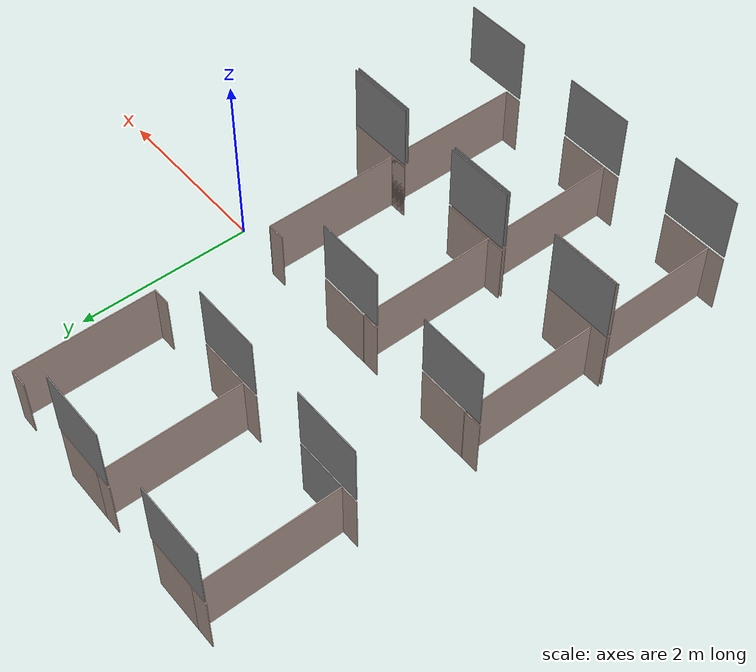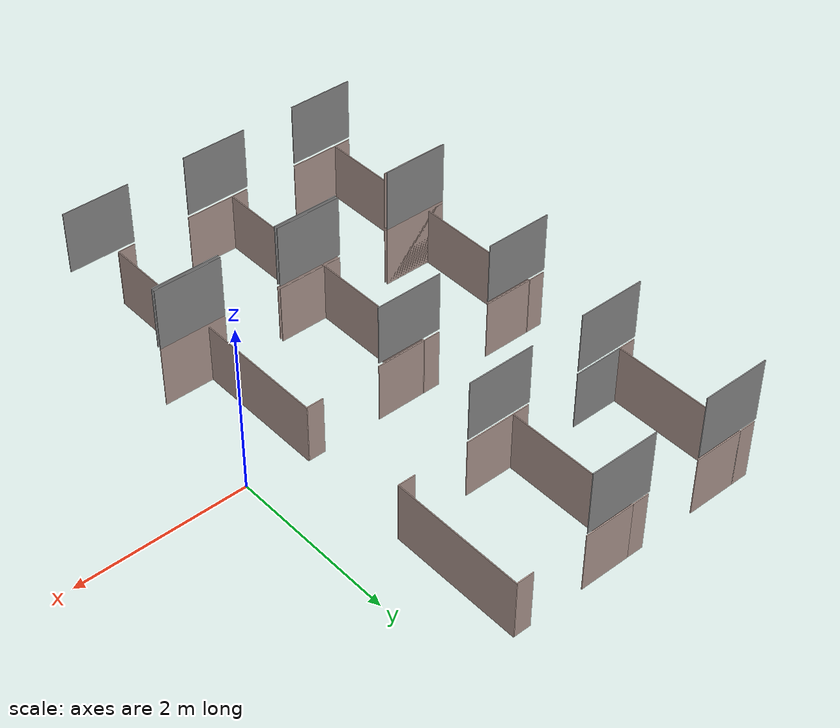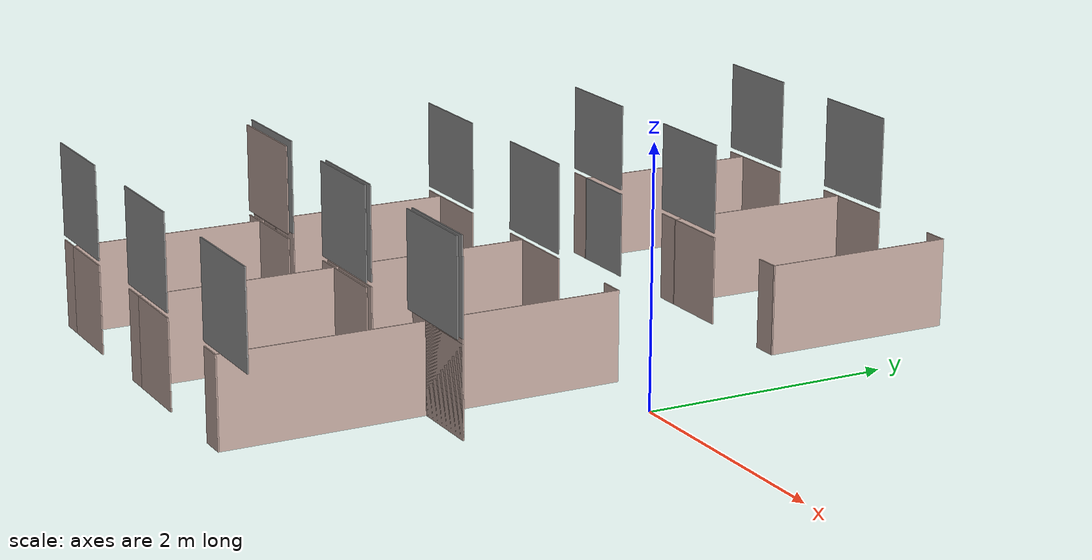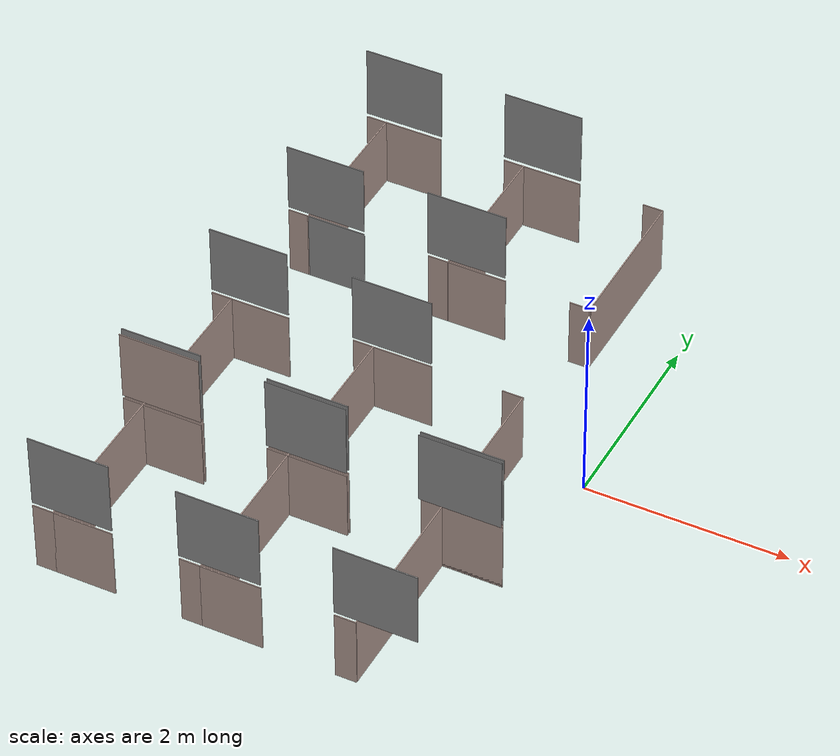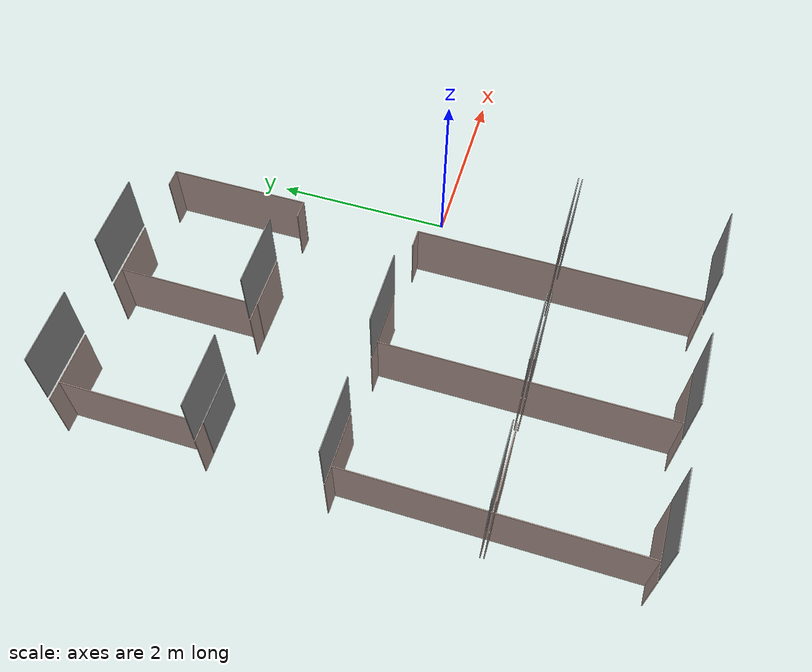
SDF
<sdf version="1.6">
 <model name="change_class2">
  <pose>0.163402 0.008075 0 0 -0 0</pose>
  <link name="Wall_138">
   <collision name="Wall_138_Collision">
    <geometry><box><size>0.593 0.01 0.715</size></box></geometry>
    <pose>0 0 0.3575 0 -0 0</pose>
   </collision>
   <visual name="Wall_138_Visual">
    <pose>0 0 0.3575 0 -0 0</pose>
    <geometry><box><size>0.593 0.01 0.715</size></box></geometry>
    <material>
     <script><uri>file://media/materials/scripts/gazebo.material</uri><name>Gazebo/Grey</name></script>
     <ambient>0.760784 0.662745 0.627451 1</ambient>
    </material>
   </visual>
   <pose>-3.4519 3.04292 0 0 -0 0</pose>
  </link>
  <link name="Wall_140">
   <collision name="Wall_140_Collision">
    <geometry><box><size>0.598 0.01 0.715</size></box></geometry>
    <pose>0 0 0.3575 0 -0 0</pose>
   </collision>
   <visual name="Wall_140_Visual">
    <pose>0 0 0.3575 0 -0 0</pose>
    <geometry><box><size>0.598 0.01 0.715</size></box></geometry>
    <material>
     <script><uri>file://media/materials/scripts/gazebo.material</uri><name>Gazebo/Grey</name></script>
     <ambient>0.760784 0.662745 0.627451 1</ambient>
    </material>
   </visual>
   <pose>-1.9864 3.04292 0 0 -0 0</pose>
  </link>
  <link name="Wall_155">
   <collision name="Wall_155_Collision">
    <geometry><box><size>0.798 0.01 0.715</size></box></geometry>
    <pose>0 0 0.3575 0 -0 0</pose>
   </collision>
   <visual name="Wall_155_Visual">
    <pose>0 0 0.3575 0 -0 0</pose>
    <geometry><box><size>0.798 0.01 0.715</size></box></geometry>
    <material>
     <script><uri>file://media/materials/scripts/gazebo.material</uri><name>Gazebo/Grey</name></script>
     <ambient>1 1 1 1</ambient>
    </material>
   </visual>
   <pose>-3.5494 1.46893 0.751 0 -0 0</pose>
  </link>
  <link name="Wall_156">
   <collision name="Wall_156_Collision">
    <geometry><box><size>0.798 0.01 0.715</size></box></geometry>
    <pose>0 0 0.3575 0 -0 0</pose>
   </collision>
   <visual name="Wall_156_Visual">
    <pose>0 0 0.3575 0 -0 0</pose>
    <geometry><box><size>0.798 0.01 0.715</size></box></geometry>
    <material>
     <script><uri>file://media/materials/scripts/gazebo.material</uri><name>Gazebo/Grey</name></script>
     <ambient>1 1 1 1</ambient>
    </material>
   </visual>
   <pose>-2.0904 1.46893 0.751 0 -0 0</pose>
  </link>
  <link name="Wall_16">
   <collision name="Wall_16_Collision">
    <geometry><box><size>0.598 0.01 0.715</size></box></geometry>
    <pose>0 0 0.3575 0 -0 0</pose>
   </collision>
   <visual name="Wall_16_Visual">
    <pose>0 0 0.3575 0 -0 0</pose>
    <geometry><box><size>0.598 0.01 0.715</size></box></geometry>
    <material>
     <script><uri>file://media/materials/scripts/gazebo.material</uri><name>Gazebo/Grey</name></script>
     <ambient>0.760784 0.662745 0.627451 1</ambient>
    </material>
   </visual>
   <pose>-3.5094 0.108925 0 0 -0 0</pose>
  </link>
  <link name="Wall_160">
   <collision name="Wall_160_Collision">
    <geometry><box><size>0.798 0.01 0.715</size></box></geometry>
    <pose>0 0 0.3575 0 -0 0</pose>
   </collision>
   <visual name="Wall_160_Visual">
    <pose>0 0 0.3575 0 -0 0</pose>
    <geometry><box><size>0.798 0.01 0.715</size></box></geometry>
    <material>
     <script><uri>file://media/materials/scripts/gazebo.material</uri><name>Gazebo/Grey</name></script>
     <ambient>1 1 1 1</ambient>
    </material>
   </visual>
   <pose>-3.6094 0.108925 0.751 0 -0 0</pose>
  </link>
  <link name="Wall_161">
   <collision name="Wall_161_Collision">
    <geometry><box><size>0.797 0.01 0.715</size></box></geometry>
    <pose>0 0 0.3575 0 -0 0</pose>
   </collision>
   <visual name="Wall_161_Visual">
    <pose>0 0 0.3575 0 -0 0</pose>
    <geometry><box><size>0.797 0.01 0.715</size></box></geometry>
    <material>
     <script><uri>file://media/materials/scripts/gazebo.material</uri><name>Gazebo/Grey</name></script>
     <ambient>1 1 1 1</ambient>
    </material>
   </visual>
   <pose>-2.1499 0.104925 0.751 0 -0 0</pose>
  </link>
  <link name="Wall_164">
   <collision name="Wall_164_Collision">
    <geometry><box><size>0.798 0.01 0.751</size></box></geometry>
    <pose>0 0 0.3755 0 -0 0</pose>
   </collision>
   <visual name="Wall_164_Visual">
    <pose>0 0 0.3755 0 -0 0</pose>
    <geometry><box><size>0.798 0.01 0.751</size></box></geometry>
    <material>
     <script><uri>file://media/materials/scripts/gazebo.material</uri><name>Gazebo/Grey</name></script>
     <ambient>1 1 1 1</ambient>
    </material>
   </visual>
   <pose>-3.6094 -1.47107 0.751 0 -0 0</pose>
  </link>
  <link name="Wall_165">
   <collision name="Wall_165_Collision">
    <geometry><box><size>0.798 0.01 0.751</size></box></geometry>
    <pose>0 0 0.3755 0 -0 0</pose>
   </collision>
   <visual name="Wall_165_Visual">
    <pose>0 0 0.3755 0 -0 0</pose>
    <geometry><box><size>0.798 0.01 0.751</size></box></geometry>
    <material>
     <script><uri>file://media/materials/scripts/gazebo.material</uri><name>Gazebo/Grey</name></script>
     <ambient>1 1 1 1</ambient>
    </material>
   </visual>
   <pose>-2.1534 -1.47107 0.751 0 -0 0</pose>
  </link>
  <link name="Wall_166">
   <collision name="Wall_166_Collision">
    <geometry><box><size>0.798 0.01 0.751</size></box></geometry>
    <pose>0 0 0.3755 0 -0 0</pose>
   </collision>
   <visual name="Wall_166_Visual">
    <pose>0 0 0.3755 0 -0 0</pose>
    <geometry><box><size>0.798 0.01 0.751</size></box></geometry>
    <material>
     <script><uri>file://media/materials/scripts/gazebo.material</uri><name>Gazebo/Grey</name></script>
     <ambient>1 1 1 1</ambient>
    </material>
   </visual>
   <pose>-0.649402 -1.47107 0.751 0 -0 0</pose>
  </link>
  <link name="Wall_175">
   <collision name="Wall_175_Collision">
    <geometry><box><size>0.798 0.01 0.751</size></box></geometry>
    <pose>0 0 0.3755 0 -0 0</pose>
   </collision>
   <visual name="Wall_175_Visual">
    <pose>0 0 0.3755 0 -0 0</pose>
    <geometry><box><size>0.798 0.01 0.751</size></box></geometry>
    <material>
     <script><uri>file://media/materials/scripts/gazebo.material</uri><name>Gazebo/Grey</name></script>
     <ambient>1 1 1 1</ambient>
    </material>
   </visual>
   <pose>-0.649402 -1.47107 0.751 0 -0 0</pose>
  </link>
  <link name="Wall_176">
   <collision name="Wall_176_Collision">
    <geometry><box><size>0.798 0.01 0.751</size></box></geometry>
    <pose>0 0 0.3755 0 -0 0</pose>
   </collision>
   <visual name="Wall_176_Visual">
    <pose>0 0 0.3755 0 -0 0</pose>
    <geometry><box><size>0.798 0.01 0.751</size></box></geometry>
    <material>
     <script><uri>file://media/materials/scripts/gazebo.material</uri><name>Gazebo/Grey</name></script>
     <ambient>1 1 1 1</ambient>
    </material>
   </visual>
   <pose>-0.649402 -1.51107 0.751 0 -0 0</pose>
  </link>
  <link name="Wall_177">
   <collision name="Wall_177_Collision">
    <geometry><box><size>0.798 0.01 0.751</size></box></geometry>
    <pose>0 0 0.3755 0 -0 0</pose>
   </collision>
   <visual name="Wall_177_Visual">
    <pose>0 0 0.3755 0 -0 0</pose>
    <geometry><box><size>0.798 0.01 0.751</size></box></geometry>
    <material>
     <script><uri>file://media/materials/scripts/gazebo.material</uri><name>Gazebo/Grey</name></script>
     <ambient>1 1 1 1</ambient>
    </material>
   </visual>
   <pose>-2.1534 -1.51107 0.751 0 -0 0</pose>
  </link>
  <link name="Wall_178">
   <collision name="Wall_178_Collision">
    <geometry><box><size>0.798 0.01 0.751</size></box></geometry>
    <pose>0 0 0.3755 0 -0 0</pose>
   </collision>
   <visual name="Wall_178_Visual">
    <pose>0 0 0.3755 0 -0 0</pose>
    <geometry><box><size>0.798 0.01 0.751</size></box></geometry>
    <material>
     <script><uri>file://media/materials/scripts/gazebo.material</uri><name>Gazebo/Grey</name></script>
     <ambient>1 1 1 1</ambient>
    </material>
   </visual>
   <pose>-3.6094 -1.47107 0.751 0 -0 0</pose>
  </link>
  <link name="Wall_179">
   <collision name="Wall_179_Collision">
    <geometry><box><size>0.798 0.01 0.715</size></box></geometry>
    <pose>0 0 0.3575 0 -0 0</pose>
   </collision>
   <visual name="Wall_179_Visual">
    <pose>0 0 0.3575 0 -0 0</pose>
    <geometry><box><size>0.798 0.01 0.715</size></box></geometry>
    <material>
     <script><uri>file://media/materials/scripts/gazebo.material</uri><name>Gazebo/Grey</name></script>
     <ambient>0.760784 0.662745 0.627451 1</ambient>
    </material>
   </visual>
   <pose>-3.6094 -1.51307 0.751 0 -0 0</pose>
  </link>
  <link name="Wall_18">
   <collision name="Wall_18_Collision">
    <geometry><box><size>0.598 0.01 0.715</size></box></geometry>
    <pose>0 0 0.3575 0 -0 0</pose>
   </collision>
   <visual name="Wall_18_Visual">
    <pose>0 0 0.3575 0 -0 0</pose>
    <geometry><box><size>0.598 0.01 0.715</size></box></geometry>
    <material>
     <script><uri>file://media/materials/scripts/gazebo.material</uri><name>Gazebo/Grey</name></script>
     <ambient>0.760784 0.662745 0.627451 1</ambient>
    </material>
   </visual>
   <pose>-2.0494 0.108925 0 0 -0 0</pose>
  </link>
  <link name="Wall_180">
   <collision name="Wall_180_Collision">
    <geometry><box><size>0.798 0.01 0.751</size></box></geometry>
    <pose>0 0 0.3755 0 -0 0</pose>
   </collision>
   <visual name="Wall_180_Visual">
    <pose>0 0 0.3755 0 -0 0</pose>
    <geometry><box><size>0.798 0.01 0.751</size></box></geometry>
    <material>
     <script><uri>file://media/materials/scripts/gazebo.material</uri><name>Gazebo/Grey</name></script>
     <ambient>1 1 1 1</ambient>
    </material>
   </visual>
   <pose>-3.6094 -3.07508 0.751 0 -0 0</pose>
  </link>
  <link name="Wall_181">
   <collision name="Wall_181_Collision">
    <geometry><box><size>0.798 0.01 0.751</size></box></geometry>
    <pose>0 0 0.3755 0 -0 0</pose>
   </collision>
   <visual name="Wall_181_Visual">
    <pose>0 0 0.3755 0 -0 0</pose>
    <geometry><box><size>0.798 0.01 0.751</size></box></geometry>
    <material>
     <script><uri>file://media/materials/scripts/gazebo.material</uri><name>Gazebo/Grey</name></script>
     <ambient>1 1 1 1</ambient>
    </material>
   </visual>
   <pose>-2.1534 -3.07508 0.751 0 -0 0</pose>
  </link>
  <link name="Wall_182">
   <collision name="Wall_182_Collision">
    <geometry><box><size>0.798 0.01 0.751</size></box></geometry>
    <pose>0 0 0.3755 0 -0 0</pose>
   </collision>
   <visual name="Wall_182_Visual">
    <pose>0 0 0.3755 0 -0 0</pose>
    <geometry><box><size>0.798 0.01 0.751</size></box></geometry>
    <material>
     <script><uri>file://media/materials/scripts/gazebo.material</uri><name>Gazebo/Grey</name></script>
     <ambient>1 1 1 1</ambient>
    </material>
   </visual>
   <pose>-0.649402 -3.07508 0.751 0 -0 0</pose>
  </link>
  <link name="Wall_185">
   <collision name="Wall_185_Collision">
    <geometry><box><size>0.798 0.01 0.751</size></box></geometry>
    <pose>0 0 0.3755 0 -0 0</pose>
   </collision>
   <visual name="Wall_185_Visual">
    <pose>0 0 0.3755 0 -0 0</pose>
    <geometry><box><size>0.798 0.01 0.751</size></box></geometry>
    <material>
     <script><uri>file://media/materials/scripts/gazebo.material</uri><name>Gazebo/Grey</name></script>
     <ambient>1 1 1 1</ambient>
    </material>
   </visual>
   <pose>-3.5494 3.04893 0.751 0 -0 0</pose>
  </link>
  <link name="Wall_186">
   <collision name="Wall_186_Collision">
    <geometry><box><size>0.798 0.01 0.751</size></box></geometry>
    <pose>0 0 0.3755 0 -0 0</pose>
   </collision>
   <visual name="Wall_186_Visual">
    <pose>0 0 0.3755 0 -0 0</pose>
    <geometry><box><size>0.798 0.01 0.751</size></box></geometry>
    <material>
     <script><uri>file://media/materials/scripts/gazebo.material</uri><name>Gazebo/Grey</name></script>
     <ambient>1 1 1 1</ambient>
    </material>
   </visual>
   <pose>-2.0864 3.04893 0.751 0 -0 0</pose>
  </link>
  <link name="Wall_193">
   <collision name="Wall_193_Collision">
    <geometry><box><size>1.584 0.01 0.715</size></box></geometry>
    <pose>0 0 0.3575 0 -0 0</pose>
   </collision>
   <visual name="Wall_193_Visual">
    <pose>0 0 0.3575 0 -0 0</pose>
    <geometry><box><size>1.584 0.01 0.715</size></box></geometry>
    <material>
     <script><uri>file://media/materials/scripts/gazebo.material</uri><name>Gazebo/Grey</name></script>
     <ambient>0.760784 0.662745 0.627451 1</ambient>
    </material>
   </visual>
   <pose>-2.2804 2.25592 0 0 0 -1.5708</pose>
  </link>
  <link name="Wall_195">
   <collision name="Wall_195_Collision">
    <geometry><box><size>1.584 0.01 0.715</size></box></geometry>
    <pose>0 0 0.3575 0 -0 0</pose>
   </collision>
   <visual name="Wall_195_Visual">
    <pose>0 0 0.3575 0 -0 0</pose>
    <geometry><box><size>1.584 0.01 0.715</size></box></geometry>
    <material>
     <script><uri>file://media/materials/scripts/gazebo.material</uri><name>Gazebo/Grey</name></script>
     <ambient>0.760784 0.662745 0.627451 1</ambient>
    </material>
   </visual>
   <pose>-0.829402 2.25592 0 0 0 -1.5708</pose>
  </link>
  <link name="Wall_203">
   <collision name="Wall_203_Collision">
    <geometry><box><size>3.194 0.01 0.715</size></box></geometry>
    <pose>0 0 0.3575 0 -0 0</pose>
   </collision>
   <visual name="Wall_203_Visual">
    <pose>0 0 0.3575 0 -0 0</pose>
    <geometry><box><size>3.194 0.01 0.715</size></box></geometry>
    <material>
     <script><uri>file://media/materials/scripts/gazebo.material</uri><name>Gazebo/Grey</name></script>
     <ambient>0.760784 0.662745 0.627451 1</ambient>
    </material>
   </visual>
   <pose>-3.8034 -1.48307 0 0 0 -1.5708</pose>
  </link>
  <link name="Wall_205">
   <collision name="Wall_205_Collision">
    <geometry><box><size>3.194 0.01 0.715</size></box></geometry>
    <pose>0 0 0.3575 0 -0 0</pose>
   </collision>
   <visual name="Wall_205_Visual">
    <pose>0 0 0.3575 0 -0 0</pose>
    <geometry><box><size>3.194 0.01 0.715</size></box></geometry>
    <material>
     <script><uri>file://media/materials/scripts/gazebo.material</uri><name>Gazebo/Grey</name></script>
     <ambient>0.760784 0.662745 0.627451 1</ambient>
    </material>
   </visual>
   <pose>-2.3434 -1.48307 0 0 0 -1.5708</pose>
  </link>
  <link name="Wall_207">
   <collision name="Wall_207_Collision">
    <geometry><box><size>3.194 0.01 0.715</size></box></geometry>
    <pose>0 0 0.3575 0 -0 0</pose>
   </collision>
   <visual name="Wall_207_Visual">
    <pose>0 0 0.3575 0 -0 0</pose>
    <geometry><box><size>3.194 0.01 0.715</size></box></geometry>
    <material>
     <script><uri>file://media/materials/scripts/gazebo.material</uri><name>Gazebo/Grey</name></script>
     <ambient>0.760784 0.662745 0.627451 1</ambient>
    </material>
   </visual>
   <pose>-0.841402 -1.48307 0 0 0 -1.5708</pose>
  </link>
  <link name="Wall_214">
   <collision name="Wall_214_Collision">
    <geometry><box><size>0.01 0.01 0.715</size></box></geometry>
    <pose>0 0 0.3575 0 -0 0</pose>
   </collision>
   <visual name="Wall_214_Visual">
    <pose>0 0 0.3575 0 -0 0</pose>
    <geometry><box><size>0.01 0.01 0.715</size></box></geometry>
    <material>
     <script><uri>file://media/materials/scripts/gazebo.material</uri><name>Gazebo/Grey</name></script>
     <ambient>0.760784 0.662745 0.627451 1</ambient>
    </material>
   </visual>
   <pose>-3.7434 1.46893 0 0 -0 0</pose>
  </link>
  <link name="Wall_216">
   <collision name="Wall_216_Collision">
    <geometry><box><size>0.01 0.01 0.715</size></box></geometry>
    <pose>0 0 0.3575 0 -0 0</pose>
   </collision>
   <visual name="Wall_216_Visual">
    <pose>0 0 0.3575 0 -0 0</pose>
    <geometry><box><size>0.01 0.01 0.715</size></box></geometry>
    <material>
     <script><uri>file://media/materials/scripts/gazebo.material</uri><name>Gazebo/Grey</name></script>
     <ambient>0.760784 0.662745 0.627451 1</ambient>
    </material>
   </visual>
   <pose>-3.7434 1.46893 0 0 -0 0</pose>
  </link>
  <link name="Wall_218">
   <collision name="Wall_218_Collision">
    <geometry><box><size>0.01 0.01 0.715</size></box></geometry>
    <pose>0 0 0.3575 0 -0 0</pose>
   </collision>
   <visual name="Wall_218_Visual">
    <pose>0 0 0.3575 0 -0 0</pose>
    <geometry><box><size>0.01 0.01 0.715</size></box></geometry>
    <material>
     <script><uri>file://media/materials/scripts/gazebo.material</uri><name>Gazebo/Grey</name></script>
     <ambient>1 1 1 1</ambient>
    </material>
   </visual>
   <pose>-3.7434 3.04292 0 0 -0 0</pose>
  </link>
  <link name="Wall_222">
   <collision name="Wall_222_Collision">
    <geometry><box><size>1.584 0.01 0.715</size></box></geometry>
    <pose>0 0 0.3575 0 -0 0</pose>
   </collision>
   <visual name="Wall_222_Visual">
    <pose>0 0 0.3575 0 -0 0</pose>
    <geometry><box><size>1.584 0.01 0.715</size></box></geometry>
    <material>
     <script><uri>file://media/materials/scripts/gazebo.material</uri><name>Gazebo/Grey</name></script>
     <ambient>0.760784 0.662745 0.627451 1</ambient>
    </material>
   </visual>
   <pose>-3.7434 2.25592 0 0 -0 1.5708</pose>
  </link>
  <link name="Wall_224">
   <collision name="Wall_224_Collision">
    <geometry><box><size>0.21 0.01 0.715</size></box></geometry>
    <pose>0 0 0.3575 0 -0 0</pose>
   </collision>
   <visual name="Wall_224_Visual">
    <pose>0 0 0.3575 0 -0 0</pose>
    <geometry><box><size>0.21 0.01 0.715</size></box></geometry>
    <material>
     <script><uri>file://media/materials/scripts/gazebo.material</uri><name>Gazebo/Grey</name></script>
     <ambient>0.760784 0.662745 0.627451 1</ambient>
    </material>
   </visual>
   <pose>-3.8434 3.04292 0 0 -0 0</pose>
  </link>
  <link name="Wall_226">
   <collision name="Wall_226_Collision">
    <geometry><box><size>0.21 0.01 0.715</size></box></geometry>
    <pose>0 0 0.3575 0 -0 0</pose>
   </collision>
   <visual name="Wall_226_Visual">
    <pose>0 0 0.3575 0 -0 0</pose>
    <geometry><box><size>0.21 0.01 0.715</size></box></geometry>
    <material>
     <script><uri>file://media/materials/scripts/gazebo.material</uri><name>Gazebo/Grey</name></script>
     <ambient>0.760784 0.662745 0.627451 1</ambient>
    </material>
   </visual>
   <pose>-3.8434 1.46893 0 0 -0 0</pose>
  </link>
  <link name="Wall_228">
   <collision name="Wall_228_Collision">
    <geometry><box><size>0.21 0.01 0.715</size></box></geometry>
    <pose>0 0 0.3575 0 -0 0</pose>
   </collision>
   <visual name="Wall_228_Visual">
    <pose>0 0 0.3575 0 -0 0</pose>
    <geometry><box><size>0.21 0.01 0.715</size></box></geometry>
    <material>
     <script><uri>file://media/materials/scripts/gazebo.material</uri><name>Gazebo/Grey</name></script>
     <ambient>0.760784 0.662745 0.627451 1</ambient>
    </material>
   </visual>
   <pose>-2.3804 3.04292 0 0 -0 0</pose>
  </link>
  <link name="Wall_230">
   <collision name="Wall_230_Collision">
    <geometry><box><size>0.21 0.01 0.715</size></box></geometry>
    <pose>0 0 0.3575 0 -0 0</pose>
   </collision>
   <visual name="Wall_230_Visual">
    <pose>0 0 0.3575 0 -0 0</pose>
    <geometry><box><size>0.21 0.01 0.715</size></box></geometry>
    <material>
     <script><uri>file://media/materials/scripts/gazebo.material</uri><name>Gazebo/Grey</name></script>
     <ambient>0.760784 0.662745 0.627451 1</ambient>
    </material>
   </visual>
   <pose>-2.3804 1.46893 0 0 -0 0</pose>
  </link>
  <link name="Wall_232">
   <collision name="Wall_232_Collision">
    <geometry><box><size>0.21 0.01 0.715</size></box></geometry>
    <pose>0 0 0.3575 0 -0 0</pose>
   </collision>
   <visual name="Wall_232_Visual">
    <pose>0 0 0.3575 0 -0 0</pose>
    <geometry><box><size>0.21 0.01 0.715</size></box></geometry>
    <material>
     <script><uri>file://media/materials/scripts/gazebo.material</uri><name>Gazebo/Grey</name></script>
     <ambient>0.760784 0.662745 0.627451 1</ambient>
    </material>
   </visual>
   <pose>-0.929402 1.46893 0 0 -0 0</pose>
  </link>
  <link name="Wall_234">
   <collision name="Wall_234_Collision">
    <geometry><box><size>0.21 0.01 0.715</size></box></geometry>
    <pose>0 0 0.3575 0 -0 0</pose>
   </collision>
   <visual name="Wall_234_Visual">
    <pose>0 0 0.3575 0 -0 0</pose>
    <geometry><box><size>0.21 0.01 0.715</size></box></geometry>
    <material>
     <script><uri>file://media/materials/scripts/gazebo.material</uri><name>Gazebo/Grey</name></script>
     <ambient>0.760784 0.662745 0.627451 1</ambient>
    </material>
   </visual>
   <pose>-0.929402 3.04292 0 0 -0 0</pose>
  </link>
  <link name="Wall_244">
   <collision name="Wall_244_Collision">
    <geometry><box><size>0.21 0.01 0.715</size></box></geometry>
    <pose>0 0 0.3575 0 -0 0</pose>
   </collision>
   <visual name="Wall_244_Visual">
    <pose>0 0 0.3575 0 -0 0</pose>
    <geometry><box><size>0.21 0.01 0.715</size></box></geometry>
    <material>
     <script><uri>file://media/materials/scripts/gazebo.material</uri><name>Gazebo/Grey</name></script>
     <ambient>0.760784 0.662745 0.627451 1</ambient>
    </material>
   </visual>
   <pose>-3.9034 0.108925 0 0 -0 0</pose>
  </link>
  <link name="Wall_246">
   <collision name="Wall_246_Collision">
    <geometry><box><size>0.21 0.01 0.715</size></box></geometry>
    <pose>0 0 0.3575 0 -0 0</pose>
   </collision>
   <visual name="Wall_246_Visual">
    <pose>0 0 0.3575 0 -0 0</pose>
    <geometry><box><size>0.21 0.01 0.715</size></box></geometry>
    <material>
     <script><uri>file://media/materials/scripts/gazebo.material</uri><name>Gazebo/Grey</name></script>
     <ambient>0.760784 0.662745 0.627451 1</ambient>
    </material>
   </visual>
   <pose>-3.9034 -3.07508 0 0 -0 0</pose>
  </link>
  <link name="Wall_248">
   <collision name="Wall_248_Collision">
    <geometry><box><size>0.21 0.01 0.715</size></box></geometry>
    <pose>0 0 0.3575 0 -0 0</pose>
   </collision>
   <visual name="Wall_248_Visual">
    <pose>0 0 0.3575 0 -0 0</pose>
    <geometry><box><size>0.21 0.01 0.715</size></box></geometry>
    <material>
     <script><uri>file://media/materials/scripts/gazebo.material</uri><name>Gazebo/Grey</name></script>
     <ambient>0.760784 0.662745 0.627451 1</ambient>
    </material>
   </visual>
   <pose>-2.4434 0.108925 0 0 -0 0</pose>
  </link>
  <link name="Wall_250">
   <collision name="Wall_250_Collision">
    <geometry><box><size>0.21 0.01 0.715</size></box></geometry>
    <pose>0 0 0.3575 0 -0 0</pose>
   </collision>
   <visual name="Wall_250_Visual">
    <pose>0 0 0.3575 0 -0 0</pose>
    <geometry><box><size>0.21 0.01 0.715</size></box></geometry>
    <material>
     <script><uri>file://media/materials/scripts/gazebo.material</uri><name>Gazebo/Grey</name></script>
     <ambient>0.760784 0.662745 0.627451 1</ambient>
    </material>
   </visual>
   <pose>-2.4434 -3.07508 0 0 -0 0</pose>
  </link>
  <link name="Wall_26">
   <collision name="Wall_26_Collision">
    <geometry><box><size>0.798 0.01 0.751</size></box></geometry>
    <pose>0 0 0.3755 0 -0 0</pose>
   </collision>
   <visual name="Wall_26_Visual">
    <pose>0 0 0.3755 0 -0 0</pose>
    <geometry><box><size>0.798 0.01 0.751</size></box></geometry>
    <material>
     <script><uri>file://media/materials/scripts/gazebo.material</uri><name>Gazebo/Grey</name></script>
     <ambient>0.760784 0.662745 0.627451 1</ambient>
    </material>
   </visual>
   <pose>-3.6094 -1.47107 0 0 -0 0</pose>
  </link>
  <link name="Wall_28">
   <collision name="Wall_28_Collision">
    <geometry><box><size>0.798 0.01 0.715</size></box></geometry>
    <pose>0 0 0.3575 0 -0 0</pose>
   </collision>
   <visual name="Wall_28_Visual">
    <pose>0 0 0.3575 0 -0 0</pose>
    <geometry><box><size>0.798 0.01 0.715</size></box></geometry>
    <material>
     <script><uri>file://media/materials/scripts/gazebo.material</uri><name>Gazebo/Grey</name></script>
     <ambient>0.760784 0.662745 0.627451 1</ambient>
    </material>
   </visual>
   <pose>-2.1534 -1.47107 0 0 -0 0</pose>
  </link>
  <link name="Wall_287">
   <collision name="Wall_287_Collision">
    <geometry><box><size>0.21 0.01 0.715</size></box></geometry>
    <pose>0 0 0.3575 0 -0 0</pose>
   </collision>
   <visual name="Wall_287_Visual">
    <pose>0 0 0.3575 0 -0 0</pose>
    <geometry><box><size>0.21 0.01 0.715</size></box></geometry>
    <material>
     <script><uri>file://media/materials/scripts/gazebo.material</uri><name>Gazebo/Grey</name></script>
     <ambient>0.760784 0.662745 0.627451 1</ambient>
    </material>
   </visual>
   <pose>-0.941402 0.108925 0 0 -0 0</pose>
  </link>
  <link name="Wall_289">
   <collision name="Wall_289_Collision">
    <geometry><box><size>0.21 0.01 0.715</size></box></geometry>
    <pose>0 0 0.3575 0 -0 0</pose>
   </collision>
   <visual name="Wall_289_Visual">
    <pose>0 0 0.3575 0 -0 0</pose>
    <geometry><box><size>0.21 0.01 0.715</size></box></geometry>
    <material>
     <script><uri>file://media/materials/scripts/gazebo.material</uri><name>Gazebo/Grey</name></script>
     <ambient>0.760784 0.662745 0.627451 1</ambient>
    </material>
   </visual>
   <pose>-0.941402 -3.07508 0 0 -0 0</pose>
  </link>
  <link name="Wall_30">
   <collision name="Wall_30_Collision">
    <geometry><box><size>0.798 0.01 0.751</size></box></geometry>
    <pose>0 0 0.3755 0 -0 0</pose>
   </collision>
   <visual name="Wall_30_Visual">
    <pose>0 0 0.3755 0 -0 0</pose>
    <geometry><box><size>0.798 0.01 0.751</size></box></geometry>
    <material>
     <script><uri>file://media/materials/scripts/gazebo.material</uri><name>Gazebo/Grey</name></script>
     <ambient>0.760784 0.662745 0.627451 1</ambient>
    </material>
   </visual>
   <pose>-0.649402 -1.47107 0 0 -0 0</pose>
  </link>
  <link name="Wall_53">
   <collision name="Wall_53_Collision">
    <geometry><box><size>0.798 0.01 0.715</size></box></geometry>
    <pose>0 0 0.3575 0 -0 0</pose>
   </collision>
   <visual name="Wall_53_Visual">
    <pose>0 0 0.3575 0 -0 0</pose>
    <geometry><box><size>0.798 0.01 0.715</size></box></geometry>
    <material>
     <script><uri>file://media/materials/scripts/gazebo.material</uri><name>Gazebo/Grey</name></script>
     <ambient>0.760784 0.662745 0.627451 1</ambient>
    </material>
   </visual>
   <pose>-0.649402 -1.47107 0 0 -0 0</pose>
  </link>
  <link name="Wall_57">
   <collision name="Wall_57_Collision">
    <geometry><box><size>0.798 0.01 0.715</size></box></geometry>
    <pose>0 0 0.3575 0 -0 0</pose>
   </collision>
   <visual name="Wall_57_Visual">
    <pose>0 0 0.3575 0 -0 0</pose>
    <geometry><box><size>0.798 0.01 0.715</size></box></geometry>
    <material>
     <script><uri>file://media/materials/scripts/gazebo.material</uri><name>Gazebo/Grey</name></script>
     <ambient>0.760784 0.662745 0.627451 1</ambient>
    </material>
   </visual>
   <pose>-2.1534 -1.51107 0 0 -0 0</pose>
  </link>
  <link name="Wall_59">
   <collision name="Wall_59_Collision">
    <geometry><box><size>0.798 0.01 0.715</size></box></geometry>
    <pose>0 0 0.3575 0 -0 0</pose>
   </collision>
   <visual name="Wall_59_Visual">
    <pose>0 0 0.3575 0 -0 0</pose>
    <geometry><box><size>0.798 0.01 0.715</size></box></geometry>
    <material>
     <script><uri>file://media/materials/scripts/gazebo.material</uri><name>Gazebo/Grey</name></script>
     <ambient>0.760784 0.662745 0.627451 1</ambient>
    </material>
   </visual>
   <pose>-3.6094 -1.47107 0 0 -0 0</pose>
  </link>
  <link name="Wall_6">
   <collision name="Wall_6_Collision">
    <geometry><box><size>0.598 0.01 0.715</size></box></geometry>
    <pose>0 0 0.3575 0 -0 0</pose>
   </collision>
   <visual name="Wall_6_Visual">
    <pose>0 0 0.3575 0 -0 0</pose>
    <geometry><box><size>0.598 0.01 0.715</size></box></geometry>
    <material>
     <script><uri>file://media/materials/scripts/gazebo.material</uri><name>Gazebo/Grey</name></script>
     <ambient>0.494118 0.494118 0.494118 1</ambient>
    </material>
   </visual>
   <pose>-3.4494 1.46893 0 0 -0 0</pose>
  </link>
  <link name="Wall_61">
   <collision name="Wall_61_Collision">
    <geometry><box><size>0.798 0.01 0.715</size></box></geometry>
    <pose>0 0 0.3575 0 -0 0</pose>
   </collision>
   <visual name="Wall_61_Visual">
    <pose>0 0 0.3575 0 -0 0</pose>
    <geometry><box><size>0.798 0.01 0.715</size></box></geometry>
    <material>
     <script><uri>file://media/materials/scripts/gazebo.material</uri><name>Gazebo/Grey</name></script>
     <ambient>0.760784 0.662745 0.627451 1</ambient>
    </material>
   </visual>
   <pose>-3.6094 -1.51107 0 0 -0 0</pose>
  </link>
  <link name="Wall_65">
   <collision name="Wall_65_Collision">
    <geometry><box><size>0.598 0.01 0.715</size></box></geometry>
    <pose>0 0 0.3575 0 -0 0</pose>
   </collision>
   <visual name="Wall_65_Visual">
    <pose>0 0 0.3575 0 -0 0</pose>
    <geometry><box><size>0.598 0.01 0.715</size></box></geometry>
    <material>
     <script><uri>file://media/materials/scripts/gazebo.material</uri><name>Gazebo/Grey</name></script>
     <ambient>0.760784 0.662745 0.627451 1</ambient>
    </material>
   </visual>
   <pose>-3.5094 -3.07508 0 0 -0 0</pose>
  </link>
  <link name="Wall_67">
   <collision name="Wall_67_Collision">
    <geometry><box><size>0.598 0.01 0.715</size></box></geometry>
    <pose>0 0 0.3575 0 -0 0</pose>
   </collision>
   <visual name="Wall_67_Visual">
    <pose>0 0 0.3575 0 -0 0</pose>
    <geometry><box><size>0.598 0.01 0.715</size></box></geometry>
    <material>
     <script><uri>file://media/materials/scripts/gazebo.material</uri><name>Gazebo/Grey</name></script>
     <ambient>0.760784 0.662745 0.627451 1</ambient>
    </material>
   </visual>
   <pose>-2.0494 -3.07508 0 0 -0 0</pose>
  </link>
  <link name="Wall_8">
   <collision name="Wall_8_Collision">
    <geometry><box><size>0.598 0.01 0.715</size></box></geometry>
    <pose>0 0 0.3575 0 -0 0</pose>
   </collision>
   <visual name="Wall_8_Visual">
    <pose>0 0 0.3575 0 -0 0</pose>
    <geometry><box><size>0.598 0.01 0.715</size></box></geometry>
    <material>
     <script><uri>file://media/materials/scripts/gazebo.material</uri><name>Gazebo/Grey</name></script>
     <ambient>0.760784 0.662745 0.627451 1</ambient>
    </material>
   </visual>
   <pose>-1.9864 1.46893 0 0 -0 0</pose>
  </link>
  <static>1</static>
 </model>
</sdf>
